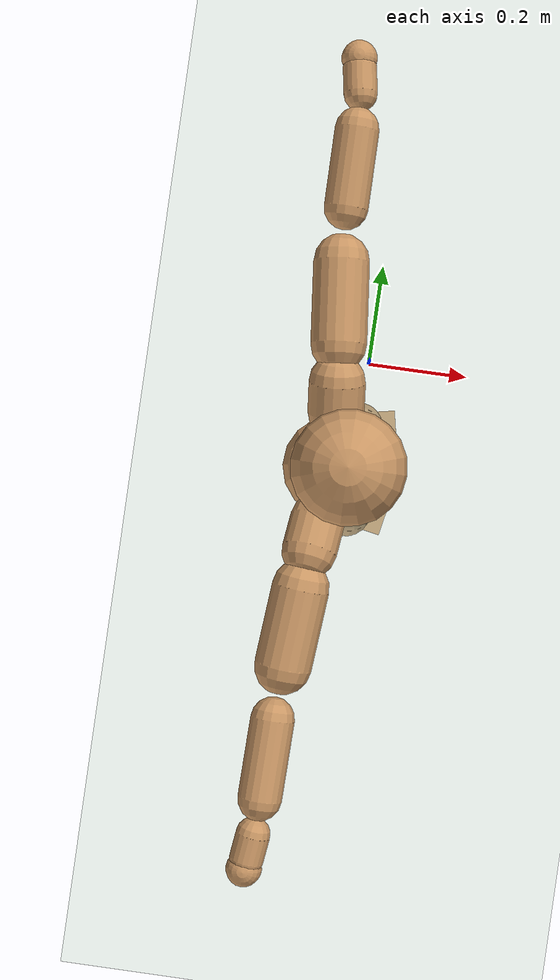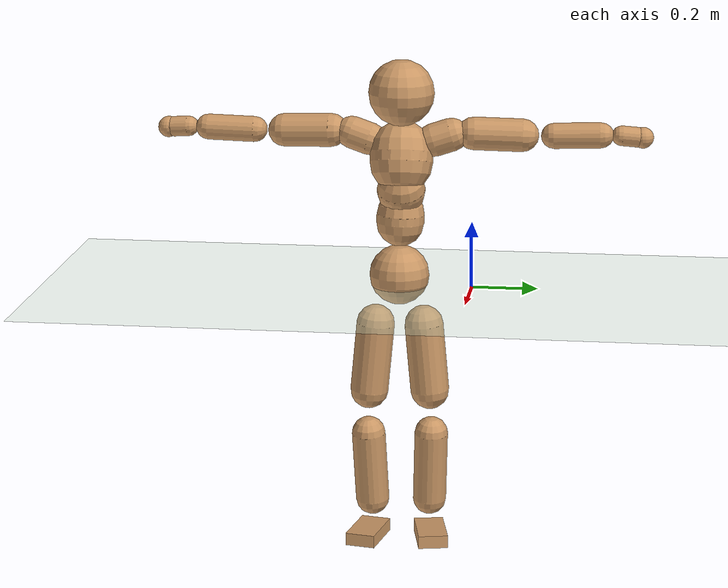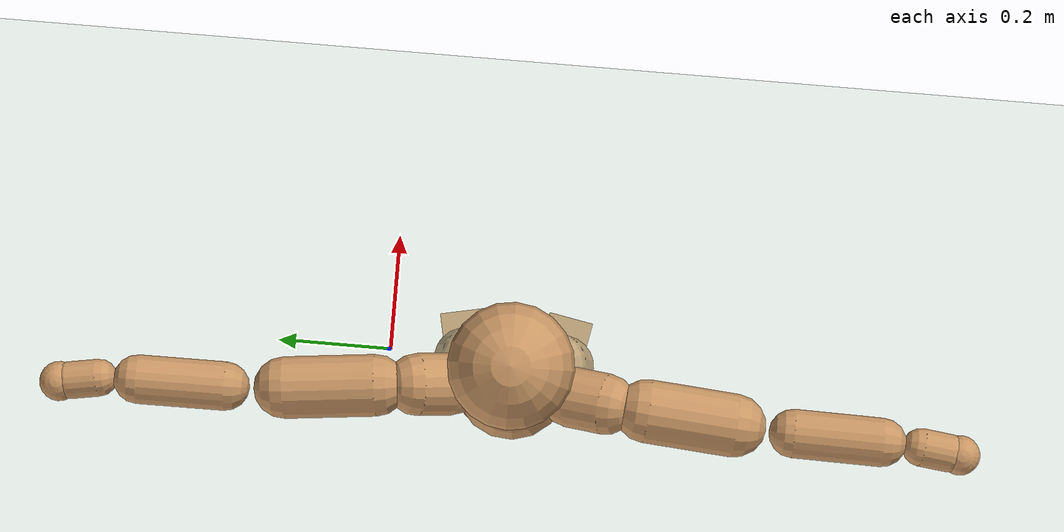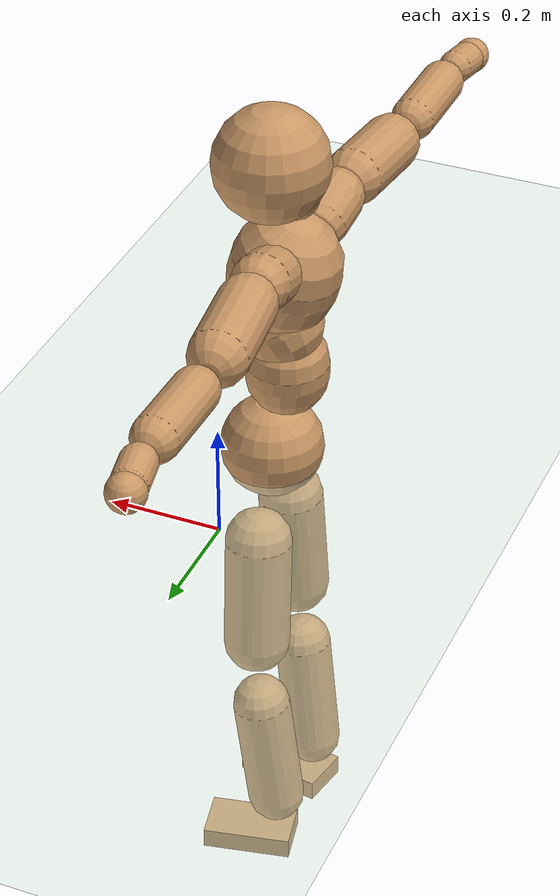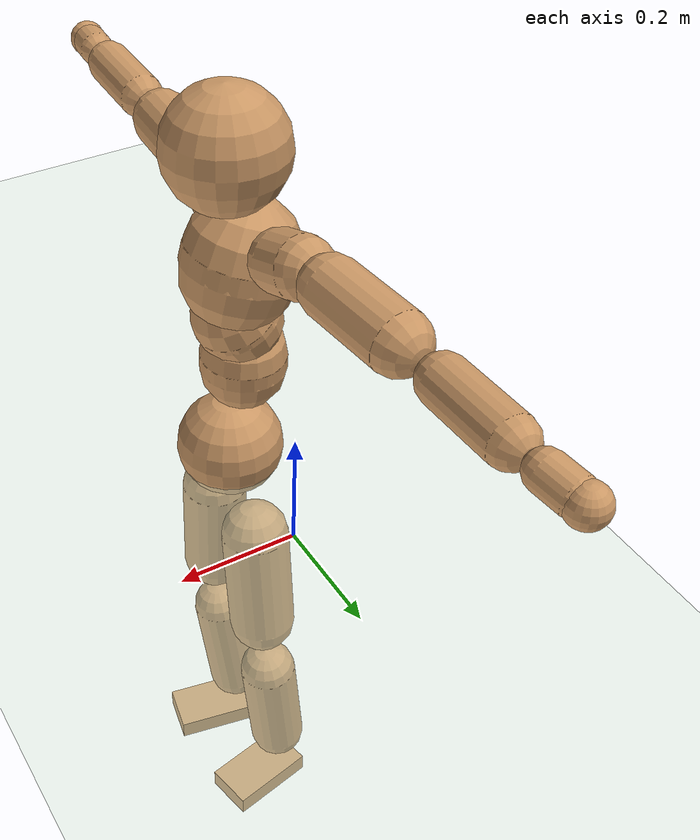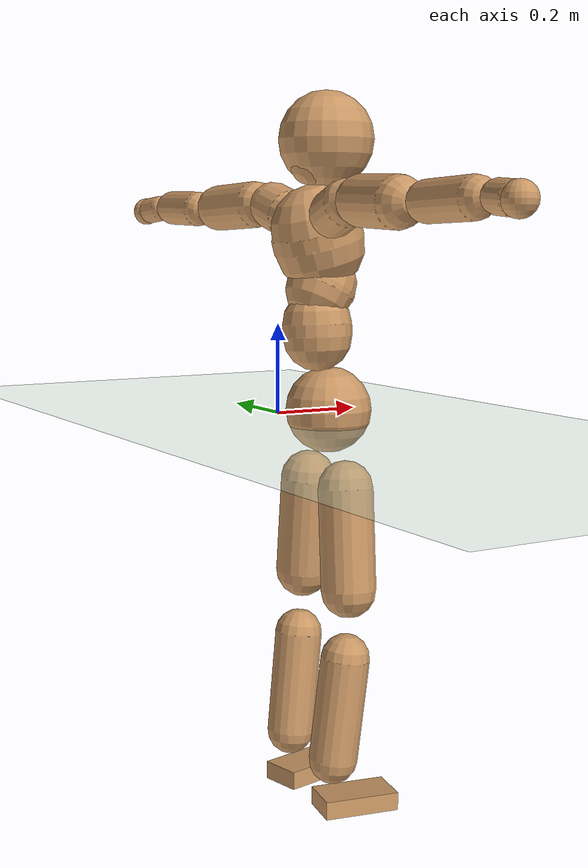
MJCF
<mujoco model="humanoid">
  <compiler coordinate="local"/>
  <default>
    <joint damping="0.0" armature="0.01" stiffness="0.0" limited="true"/>
    <geom conaffinity="1" condim="3" contype="7" margin="0.001" rgba="0.8 0.6 .4 1"/>
  </default>
  <asset>
    <texture type="skybox" builtin="gradient" rgb1=".4 .5 .6" rgb2="0 0 0" width="100" height="100"/>
    <texture builtin="flat" height="1278" mark="cross" markrgb="1 1 1" name="texgeom" random="0.01" rgb1="0.8 0.6 0.4" rgb2="0.8 0.6 0.4" type="cube" width="127"/>
    <texture builtin="checker" height="100" name="texplane" rgb1="0 0 0" rgb2="0.8 0.8 0.8" type="2d" width="100"/>
    <material name="MatPlane" reflectance="0.5" shininess="1" specular="1" texrepeat="60 60" texture="texplane"/>
    <material name="geom" texture="texgeom" texuniform="true"/>
  </asset>
  <worldbody>
    <light cutoff="100" diffuse="1 1 1" dir="-0 0 -1.3" directional="true" exponent="1" pos="0 0 1.3" specular=".1 .1 .1"/>
    <geom conaffinity="1" condim="3" name="floor" pos="0 0 0" rgba="0.8 0.9 0.8 1" size="100 100 .2" type="plane" material="MatPlane"/>
    <body name="Pelvis" pos="-0.0018 -0.2191 0.0322">
      <freejoint name="Pelvis"/>
      <geom type="sphere" contype="1" conaffinity="1" density="500" size="0.0909" pos="0.0000 0.0000 0.0000" name="Pelvis"/>
      <body name="L_Hip" pos="-0.0042 0.0685 -0.087">
        <joint name="L_Hip_x" type="hinge" pos="0 0 0" axis="1 0 0" stiffness="800" damping="80" armature="0.02" range="-180.0000 180.0000"/>
        <joint name="L_Hip_y" type="hinge" pos="0 0 0" axis="0 1 0" stiffness="800" damping="80" armature="0.02" range="-180.0000 180.0000"/>
        <joint name="L_Hip_z" type="hinge" pos="0 0 0" axis="0 0 1" stiffness="800" damping="80" armature="0.02" range="-180.0000 180.0000"/>
        <geom type="capsule" contype="1" conaffinity="1" density="500" fromto="-0.0007 0.0061 -0.0696 -0.0030 0.0244 -0.2784" size="0.0592" name="L_Hip"/>
        <body name="L_Knee" pos="-0.0037 0.0306 -0.3481">
          <joint name="L_Knee_x" type="hinge" pos="0 0 0" axis="1 0 0" stiffness="800" damping="80" armature="0.02" range="-180.0000 180.0000"/>
          <joint name="L_Knee_y" type="hinge" pos="0 0 0" axis="0 1 0" stiffness="800" damping="80" armature="0.02" range="-180.0000 180.0000"/>
          <joint name="L_Knee_z" type="hinge" pos="0 0 0" axis="0 0 1" stiffness="800" damping="80" armature="0.02" range="-180.0000 180.0000"/>
          <geom type="capsule" contype="1" conaffinity="1" density="500" fromto="-0.0083 -0.0024 -0.0737 -0.0330 -0.0097 -0.2947" size="0.0516" name="L_Knee"/>
          <body name="L_Ankle" pos="-0.0413 -0.0121 -0.3683">
            <joint name="L_Ankle_x" type="hinge" pos="0 0 0" axis="1 0 0" stiffness="800" damping="80" armature="0.02" range="-180.0000 180.0000"/>
            <joint name="L_Ankle_y" type="hinge" pos="0 0 0" axis="0 1 0" stiffness="800" damping="80" armature="0.02" range="-180.0000 180.0000"/>
            <joint name="L_Ankle_z" type="hinge" pos="0 0 0" axis="0 0 1" stiffness="800" damping="80" armature="0.02" range="-180.0000 180.0000"/>
            <geom type="box" contype="1" conaffinity="1" density="500" pos="0.0567 0.0117 -0.0263" size="0.0808 0.0453 0.0197" quat="0.9948 0.0000 0.0000 0.1018" name="L_Ankle"/>
            <body name="L_Toe" pos="0.1134 0.0234 -0.0527">
              <joint name="L_Toe_x" type="hinge" pos="0 0 0" axis="1 0 0" stiffness="500" damping="50" armature="0.02" range="-180.0000 180.0000"/>
              <joint name="L_Toe_y" type="hinge" pos="0 0 0" axis="0 1 0" stiffness="500" damping="50" armature="0.02" range="-180.0000 180.0000"/>
              <joint name="L_Toe_z" type="hinge" pos="0 0 0" axis="0 0 1" stiffness="500" damping="50" armature="0.02" range="-180.0000 180.0000"/>
              <geom type="box" contype="1" conaffinity="1" density="500" pos="0.0000 0.0000 0.0257" size="0.0009 0.0023 0.001" quat="0.9941 0.0000 0.0000 0.1083" name="L_Toe"/>
            </body>
          </body>
        </body>
      </body>
      <body name="R_Hip" pos="-0.0014 -0.0666 -0.0862">
        <joint name="R_Hip_x" type="hinge" pos="0 0 0" axis="1 0 0" stiffness="800" damping="80" armature="0.02" range="-180.0000 180.0000"/>
        <joint name="R_Hip_y" type="hinge" pos="0 0 0" axis="0 1 0" stiffness="800" damping="80" armature="0.02" range="-180.0000 180.0000"/>
        <joint name="R_Hip_z" type="hinge" pos="0 0 0" axis="0 0 1" stiffness="800" damping="80" armature="0.02" range="-180.0000 180.0000"/>
        <geom type="capsule" contype="1" conaffinity="1" density="500" fromto="-0.0013 -0.0069 -0.0711 -0.0053 -0.0276 -0.2846" size="0.0584" name="R_Hip"/>
        <body name="R_Knee" pos="-0.0066 -0.0345 -0.3557">
          <joint name="R_Knee_x" type="hinge" pos="0 0 0" axis="1 0 0" stiffness="800" damping="80" armature="0.02" range="-180.0000 180.0000"/>
          <joint name="R_Knee_y" type="hinge" pos="0 0 0" axis="0 1 0" stiffness="800" damping="80" armature="0.02" range="-180.0000 180.0000"/>
          <joint name="R_Knee_z" type="hinge" pos="0 0 0" axis="0 0 1" stiffness="800" damping="80" armature="0.02" range="-180.0000 180.0000"/>
          <geom type="capsule" contype="1" conaffinity="1" density="500" fromto="-0.0080 0.0028 -0.0738 -0.0320 0.0113 -0.2953" size="0.0518" name="R_Knee"/>
          <body name="R_Ankle" pos="-0.0399 0.0141 -0.3691">
            <joint name="R_Ankle_x" type="hinge" pos="0 0 0" axis="1 0 0" stiffness="800" damping="80" armature="0.02" range="-180.0000 180.0000"/>
            <joint name="R_Ankle_y" type="hinge" pos="0 0 0" axis="0 1 0" stiffness="800" damping="80" armature="0.02" range="-180.0000 180.0000"/>
            <joint name="R_Ankle_z" type="hinge" pos="0 0 0" axis="0 0 1" stiffness="800" damping="80" armature="0.02" range="-180.0000 180.0000"/>
            <geom type="box" contype="1" conaffinity="1" density="500" pos="0.0582 -0.0109 -0.0224" size="0.0814 0.0459 0.0194" quat="0.9957 0.0000 0.0000 -0.0927" name="R_Ankle"/>
            <body name="R_Toe" pos="0.1164 -0.0219 -0.0448">
              <joint name="R_Toe_x" type="hinge" pos="0 0 0" axis="1 0 0" stiffness="500" damping="50" armature="0.02" range="-180.0000 180.0000"/>
              <joint name="R_Toe_y" type="hinge" pos="0 0 0" axis="0 1 0" stiffness="500" damping="50" armature="0.02" range="-180.0000 180.0000"/>
              <joint name="R_Toe_z" type="hinge" pos="0 0 0" axis="0 0 1" stiffness="500" damping="50" armature="0.02" range="-180.0000 180.0000"/>
              <geom type="box" contype="1" conaffinity="1" density="500" pos="0.0000 0.0000 0.0234" size="0.0009 0.0023 0.001" quat="0.9966 0.0000 0.0000 -0.0830" name="R_Toe"/>
            </body>
          </body>
        </body>
      </body>
      <body name="Torso" pos="-0.027 -0.0025 0.1033">
        <joint name="Torso_x" type="hinge" pos="0 0 0" axis="1 0 0" stiffness="1000" damping="100" armature="0.02" range="-180.0000 180.0000"/>
        <joint name="Torso_y" type="hinge" pos="0 0 0" axis="0 1 0" stiffness="1000" damping="100" armature="0.02" range="-180.0000 180.0000"/>
        <joint name="Torso_z" type="hinge" pos="0 0 0" axis="0 0 1" stiffness="1000" damping="100" armature="0.02" range="-180.0000 180.0000"/>
        <geom type="capsule" contype="1" conaffinity="1" density="500" fromto="-0.0015 0.0028 0.0776 -0.0010 0.0019 0.0517" size="0.0725" name="Torso"/>
        <body name="Spine" pos="-0.0025 0.0047 0.1293">
          <joint name="Spine_x" type="hinge" pos="0 0 0" axis="1 0 0" stiffness="1000" damping="100" armature="0.02" range="-180.0000 180.0000"/>
          <joint name="Spine_y" type="hinge" pos="0 0 0" axis="0 1 0" stiffness="1000" damping="100" armature="0.02" range="-180.0000 180.0000"/>
          <joint name="Spine_z" type="hinge" pos="0 0 0" axis="0 0 1" stiffness="1000" damping="100" armature="0.02" range="-180.0000 180.0000"/>
          <geom type="capsule" contype="1" conaffinity="1" density="500" fromto="0.0149 0.0011 0.0302 0.0099 0.0008 0.0201" size="0.0728" name="Spine"/>
          <body name="Chest" pos="0.0248 0.0019 0.0504">
            <joint name="Chest_x" type="hinge" pos="0 0 0" axis="1 0 0" stiffness="1000" damping="100" armature="0.02" range="-180.0000 180.0000"/>
            <joint name="Chest_y" type="hinge" pos="0 0 0" axis="0 1 0" stiffness="1000" damping="100" armature="0.02" range="-180.0000 180.0000"/>
            <joint name="Chest_z" type="hinge" pos="0 0 0" axis="0 0 1" stiffness="1000" damping="100" armature="0.02" range="-180.0000 180.0000"/>
            <geom type="capsule" contype="1" conaffinity="1" density="500" fromto="-0.0252 -0.0012 0.0891 -0.0168 -0.0008 0.0594" size="0.0951" name="Chest"/>
            <body name="Neck" pos="-0.0493 -0.003 0.2104">
              <joint name="Neck_x" type="hinge" pos="0 0 0" axis="1 0 0" stiffness="500" damping="50" armature="0.02" range="-180.0000 180.0000"/>
              <joint name="Neck_y" type="hinge" pos="0 0 0" axis="0 1 0" stiffness="500" damping="50" armature="0.02" range="-180.0000 180.0000"/>
              <joint name="Neck_z" type="hinge" pos="0 0 0" axis="0 0 1" stiffness="500" damping="50" armature="0.02" range="-180.0000 180.0000"/>
              <geom type="capsule" contype="1" conaffinity="1" density="500" fromto="0.0099 0.0010 0.0126 0.0396 0.0039 0.0503" size="0.0422" name="Neck"/>
              <body name="Head" pos="0.0495 0.0048 0.0629">
                <joint name="Head_x" type="hinge" pos="0 0 0" axis="1 0 0" stiffness="500" damping="50" armature="0.02" range="-180.0000 180.0000"/>
                <joint name="Head_y" type="hinge" pos="0 0 0" axis="0 1 0" stiffness="500" damping="50" armature="0.02" range="-180.0000 180.0000"/>
                <joint name="Head_z" type="hinge" pos="0 0 0" axis="0 0 1" stiffness="500" damping="50" armature="0.02" range="-180.0000 180.0000"/>
                <geom type="sphere" contype="1" conaffinity="1" density="500" size="0.0992" pos="0.0000 0.0000 0.0000" name="Head"/>
              </body>
            </body>
            <body name="L_Thorax" pos="-0.0359 0.0763 0.1189">
              <joint name="L_Thorax_x" type="hinge" pos="0 0 0" axis="1 0 0" stiffness="500" damping="50" armature="0.02" range="-180.0000 180.0000"/>
              <joint name="L_Thorax_y" type="hinge" pos="0 0 0" axis="0 1 0" stiffness="500" damping="50" armature="0.02" range="-180.0000 180.0000"/>
              <joint name="L_Thorax_z" type="hinge" pos="0 0 0" axis="0 0 1" stiffness="500" damping="50" armature="0.02" range="-180.0000 180.0000"/>
              <geom type="capsule" contype="1" conaffinity="1" density="500" fromto="-0.0016 0.0178 0.0057 -0.0064 0.0714 0.0230" size="0.0504" name="L_Thorax"/>
              <body name="L_Shoulder" pos="-0.008 0.0892 0.0287">
                <joint name="L_Shoulder_x" type="hinge" pos="0 0 0" axis="1 0 0" stiffness="500" damping="50" armature="0.02" range="-720.0000 720.0000"/>
                <joint name="L_Shoulder_y" type="hinge" pos="0 0 0" axis="0 1 0" stiffness="500" damping="50" armature="0.02" range="-720.0000 720.0000"/>
                <joint name="L_Shoulder_z" type="hinge" pos="0 0 0" axis="0 0 1" stiffness="500" damping="50" armature="0.02" range="-720.0000 720.0000"/>
                <geom type="capsule" contype="1" conaffinity="1" density="500" fromto="-0.0052 0.0482 -0.0019 -0.0209 0.1929 -0.0074" size="0.0499" name="L_Shoulder"/>
                <body name="L_Elbow" pos="-0.0261 0.2412 -0.0093">
                  <joint name="L_Elbow_x" type="hinge" pos="0 0 0" axis="1 0 0" stiffness="500" damping="50" armature="0.02" range="-720.0000 720.0000"/>
                  <joint name="L_Elbow_y" type="hinge" pos="0 0 0" axis="0 1 0" stiffness="500" damping="50" armature="0.02" range="-720.0000 720.0000"/>
                  <joint name="L_Elbow_z" type="hinge" pos="0 0 0" axis="0 0 1" stiffness="500" damping="50" armature="0.02" range="-720.0000 720.0000"/>
                  <geom type="capsule" contype="1" conaffinity="1" density="500" fromto="-0.0001 0.0464 0.0016 -0.0003 0.1855 0.0062" size="0.0391" name="L_Elbow"/>
                  <body name="L_Wrist" pos="-0.0003 0.2319 0.0078">
                    <joint name="L_Wrist_x" type="hinge" pos="0 0 0" axis="1 0 0" stiffness="300" damping="30" armature="0.02" range="-180.0000 180.0000"/>
                    <joint name="L_Wrist_y" type="hinge" pos="0 0 0" axis="0 1 0" stiffness="300" damping="30" armature="0.02" range="-180.0000 180.0000"/>
                    <joint name="L_Wrist_z" type="hinge" pos="0 0 0" axis="0 0 1" stiffness="300" damping="30" armature="0.02" range="-180.0000 180.0000"/>
                    <geom type="capsule" contype="1" conaffinity="1" density="500" fromto="-0.0027 0.0158 -0.0017 -0.0108 0.0632 -0.0067" size="0.0301" name="L_Wrist"/>
                    <body name="L_Hand" pos="-0.0135 0.0791 -0.0084">
                      <joint name="L_Hand_x" type="hinge" pos="0 0 0" axis="1 0 0" stiffness="300" damping="30" armature="0.02" range="-180.0000 180.0000"/>
                      <joint name="L_Hand_y" type="hinge" pos="0 0 0" axis="0 1 0" stiffness="300" damping="30" armature="0.02" range="-180.0000 180.0000"/>
                      <joint name="L_Hand_z" type="hinge" pos="0 0 0" axis="0 0 1" stiffness="300" damping="30" armature="0.02" range="-180.0000 180.0000"/>
                      <geom type="sphere" contype="1" conaffinity="1" density="500" size="0.0318" pos="0.0000 0.0000 0.0000" name="L_Hand"/>
                    </body>
                  </body>
                </body>
              </body>
            </body>
            <body name="R_Thorax" pos="-0.0409 -0.0792 0.1164">
              <joint name="R_Thorax_x" type="hinge" pos="0 0 0" axis="1 0 0" stiffness="500" damping="50" armature="0.02" range="-180.0000 180.0000"/>
              <joint name="R_Thorax_y" type="hinge" pos="0 0 0" axis="0 1 0" stiffness="500" damping="50" armature="0.02" range="-180.0000 180.0000"/>
              <joint name="R_Thorax_z" type="hinge" pos="0 0 0" axis="0 0 1" stiffness="500" damping="50" armature="0.02" range="-180.0000 180.0000"/>
              <geom type="capsule" contype="1" conaffinity="1" density="500" fromto="-0.0020 -0.0186 0.0061 -0.0081 -0.0743 0.0242" size="0.0492" name="R_Thorax"/>
              <body name="R_Shoulder" pos="-0.0101 -0.0929 0.0303">
                <joint name="R_Shoulder_x" type="hinge" pos="0 0 0" axis="1 0 0" stiffness="500" damping="50" armature="0.02" range="-720.0000 720.0000"/>
                <joint name="R_Shoulder_y" type="hinge" pos="0 0 0" axis="0 1 0" stiffness="500" damping="50" armature="0.02" range="-720.0000 720.0000"/>
                <joint name="R_Shoulder_z" type="hinge" pos="0 0 0" axis="0 0 1" stiffness="500" damping="50" armature="0.02" range="-720.0000 720.0000"/>
                <geom type="capsule" contype="1" conaffinity="1" density="500" fromto="-0.0039 -0.0472 -0.0019 -0.0156 -0.1888 -0.0077" size="0.051" name="R_Shoulder"/>
                <body name="R_Elbow" pos="-0.0195 -0.2361 -0.0097">
                  <joint name="R_Elbow_x" type="hinge" pos="0 0 0" axis="1 0 0" stiffness="500" damping="50" armature="0.02" range="-720.0000 720.0000"/>
                  <joint name="R_Elbow_y" type="hinge" pos="0 0 0" axis="0 1 0" stiffness="500" damping="50" armature="0.02" range="-720.0000 720.0000"/>
                  <joint name="R_Elbow_z" type="hinge" pos="0 0 0" axis="0 0 1" stiffness="500" damping="50" armature="0.02" range="-720.0000 720.0000"/>
                  <geom type="capsule" contype="1" conaffinity="1" density="500" fromto="-0.0009 -0.0473 0.0013 -0.0035 -0.1892 0.0050" size="0.0391" name="R_Elbow"/>
                  <body name="R_Wrist" pos="-0.0043 -0.2364 0.0063">
                    <joint name="R_Wrist_x" type="hinge" pos="0 0 0" axis="1 0 0" stiffness="300" damping="30" armature="0.02" range="-180.0000 180.0000"/>
                    <joint name="R_Wrist_y" type="hinge" pos="0 0 0" axis="0 1 0" stiffness="300" damping="30" armature="0.02" range="-180.0000 180.0000"/>
                    <joint name="R_Wrist_z" type="hinge" pos="0 0 0" axis="0 0 1" stiffness="300" damping="30" armature="0.02" range="-180.0000 180.0000"/>
                    <geom type="capsule" contype="1" conaffinity="1" density="500" fromto="-0.0020 -0.0159 -0.0013 -0.0079 -0.0635 -0.0050" size="0.0307" name="R_Wrist"/>
                    <body name="R_Hand" pos="-0.0098 -0.0794 -0.0063">
                      <joint name="R_Hand_x" type="hinge" pos="0 0 0" axis="1 0 0" stiffness="300" damping="30" armature="0.02" range="-180.0000 180.0000"/>
                      <joint name="R_Hand_y" type="hinge" pos="0 0 0" axis="0 1 0" stiffness="300" damping="30" armature="0.02" range="-180.0000 180.0000"/>
                      <joint name="R_Hand_z" type="hinge" pos="0 0 0" axis="0 0 1" stiffness="300" damping="30" armature="0.02" range="-180.0000 180.0000"/>
                      <geom type="sphere" contype="1" conaffinity="1" density="500" size="0.0320" pos="0.0000 0.0000 0.0000" name="R_Hand"/>
                    </body>
                  </body>
                </body>
              </body>
            </body>
          </body>
        </body>
      </body>
    </body>
  </worldbody>
  <actuator>
    <motor name="L_Hip_x" joint="L_Hip_x" gear="500"/>
    <motor name="L_Hip_y" joint="L_Hip_y" gear="500"/>
    <motor name="L_Hip_z" joint="L_Hip_z" gear="500"/>
    <motor name="L_Knee_x" joint="L_Knee_x" gear="500"/>
    <motor name="L_Knee_y" joint="L_Knee_y" gear="500"/>
    <motor name="L_Knee_z" joint="L_Knee_z" gear="500"/>
    <motor name="L_Ankle_x" joint="L_Ankle_x" gear="500"/>
    <motor name="L_Ankle_y" joint="L_Ankle_y" gear="500"/>
    <motor name="L_Ankle_z" joint="L_Ankle_z" gear="500"/>
    <motor name="L_Toe_x" joint="L_Toe_x" gear="500"/>
    <motor name="L_Toe_y" joint="L_Toe_y" gear="500"/>
    <motor name="L_Toe_z" joint="L_Toe_z" gear="500"/>
    <motor name="R_Hip_x" joint="R_Hip_x" gear="500"/>
    <motor name="R_Hip_y" joint="R_Hip_y" gear="500"/>
    <motor name="R_Hip_z" joint="R_Hip_z" gear="500"/>
    <motor name="R_Knee_x" joint="R_Knee_x" gear="500"/>
    <motor name="R_Knee_y" joint="R_Knee_y" gear="500"/>
    <motor name="R_Knee_z" joint="R_Knee_z" gear="500"/>
    <motor name="R_Ankle_x" joint="R_Ankle_x" gear="500"/>
    <motor name="R_Ankle_y" joint="R_Ankle_y" gear="500"/>
    <motor name="R_Ankle_z" joint="R_Ankle_z" gear="500"/>
    <motor name="R_Toe_x" joint="R_Toe_x" gear="500"/>
    <motor name="R_Toe_y" joint="R_Toe_y" gear="500"/>
    <motor name="R_Toe_z" joint="R_Toe_z" gear="500"/>
    <motor name="Torso_x" joint="Torso_x" gear="500"/>
    <motor name="Torso_y" joint="Torso_y" gear="500"/>
    <motor name="Torso_z" joint="Torso_z" gear="500"/>
    <motor name="Spine_x" joint="Spine_x" gear="500"/>
    <motor name="Spine_y" joint="Spine_y" gear="500"/>
    <motor name="Spine_z" joint="Spine_z" gear="500"/>
    <motor name="Chest_x" joint="Chest_x" gear="500"/>
    <motor name="Chest_y" joint="Chest_y" gear="500"/>
    <motor name="Chest_z" joint="Chest_z" gear="500"/>
    <motor name="Neck_x" joint="Neck_x" gear="500"/>
    <motor name="Neck_y" joint="Neck_y" gear="500"/>
    <motor name="Neck_z" joint="Neck_z" gear="500"/>
    <motor name="Head_x" joint="Head_x" gear="500"/>
    <motor name="Head_y" joint="Head_y" gear="500"/>
    <motor name="Head_z" joint="Head_z" gear="500"/>
    <motor name="L_Thorax_x" joint="L_Thorax_x" gear="500"/>
    <motor name="L_Thorax_y" joint="L_Thorax_y" gear="500"/>
    <motor name="L_Thorax_z" joint="L_Thorax_z" gear="500"/>
    <motor name="L_Shoulder_x" joint="L_Shoulder_x" gear="500"/>
    <motor name="L_Shoulder_y" joint="L_Shoulder_y" gear="500"/>
    <motor name="L_Shoulder_z" joint="L_Shoulder_z" gear="500"/>
    <motor name="L_Elbow_x" joint="L_Elbow_x" gear="500"/>
    <motor name="L_Elbow_y" joint="L_Elbow_y" gear="500"/>
    <motor name="L_Elbow_z" joint="L_Elbow_z" gear="500"/>
    <motor name="L_Wrist_x" joint="L_Wrist_x" gear="500"/>
    <motor name="L_Wrist_y" joint="L_Wrist_y" gear="500"/>
    <motor name="L_Wrist_z" joint="L_Wrist_z" gear="500"/>
    <motor name="L_Hand_x" joint="L_Hand_x" gear="500"/>
    <motor name="L_Hand_y" joint="L_Hand_y" gear="500"/>
    <motor name="L_Hand_z" joint="L_Hand_z" gear="500"/>
    <motor name="R_Thorax_x" joint="R_Thorax_x" gear="500"/>
    <motor name="R_Thorax_y" joint="R_Thorax_y" gear="500"/>
    <motor name="R_Thorax_z" joint="R_Thorax_z" gear="500"/>
    <motor name="R_Shoulder_x" joint="R_Shoulder_x" gear="500"/>
    <motor name="R_Shoulder_y" joint="R_Shoulder_y" gear="500"/>
    <motor name="R_Shoulder_z" joint="R_Shoulder_z" gear="500"/>
    <motor name="R_Elbow_x" joint="R_Elbow_x" gear="500"/>
    <motor name="R_Elbow_y" joint="R_Elbow_y" gear="500"/>
    <motor name="R_Elbow_z" joint="R_Elbow_z" gear="500"/>
    <motor name="R_Wrist_x" joint="R_Wrist_x" gear="500"/>
    <motor name="R_Wrist_y" joint="R_Wrist_y" gear="500"/>
    <motor name="R_Wrist_z" joint="R_Wrist_z" gear="500"/>
    <motor name="R_Hand_x" joint="R_Hand_x" gear="500"/>
    <motor name="R_Hand_y" joint="R_Hand_y" gear="500"/>
    <motor name="R_Hand_z" joint="R_Hand_z" gear="500"/>
  </actuator>
  <contact>
    <exclude body1="Torso" body2="Chest"/>
    <exclude body1="Head" body2="Chest"/>
    <exclude body1="R_Knee" body2="R_Toe"/>
    <exclude body1="R_Knee" body2="L_Ankle"/>
    <exclude body1="R_Knee" body2="L_Toe"/>
    <exclude body1="L_Knee" body2="L_Toe"/>
    <exclude body1="L_Knee" body2="R_Ankle"/>
    <exclude body1="L_Knee" body2="R_Toe"/>
    <exclude body1="L_Shoulder" body2="Chest"/>
    <exclude body1="R_Shoulder" body2="Chest"/>
  </contact>
  <sensor/>
  <size njmax="700" nconmax="700"/>
</mujoco>
